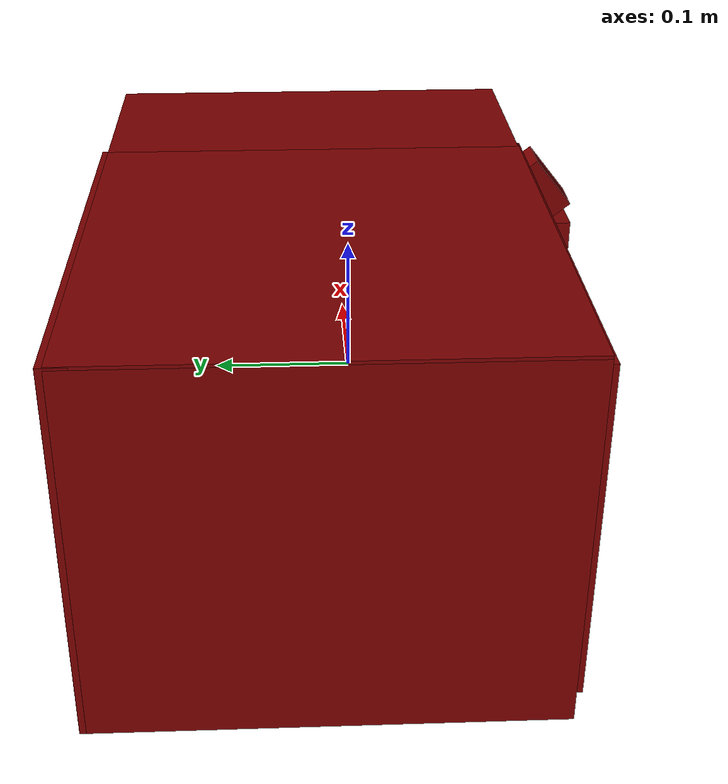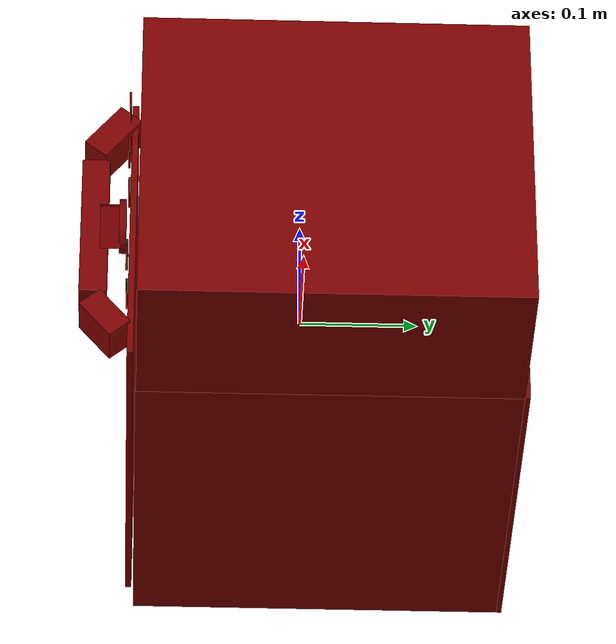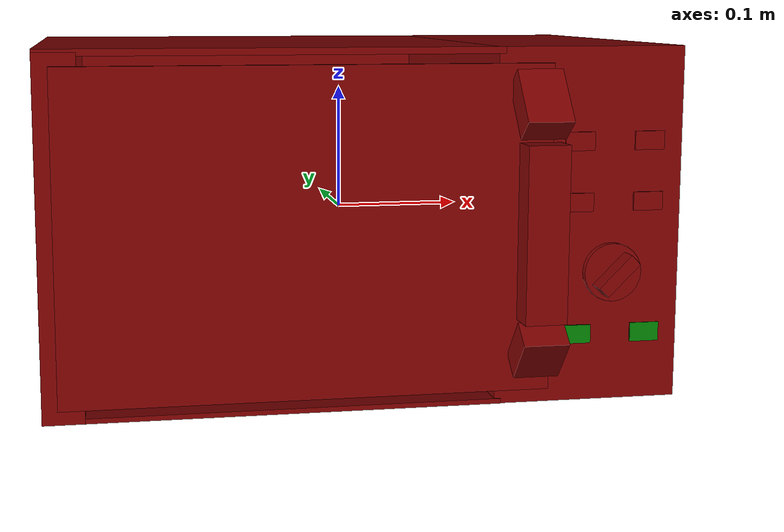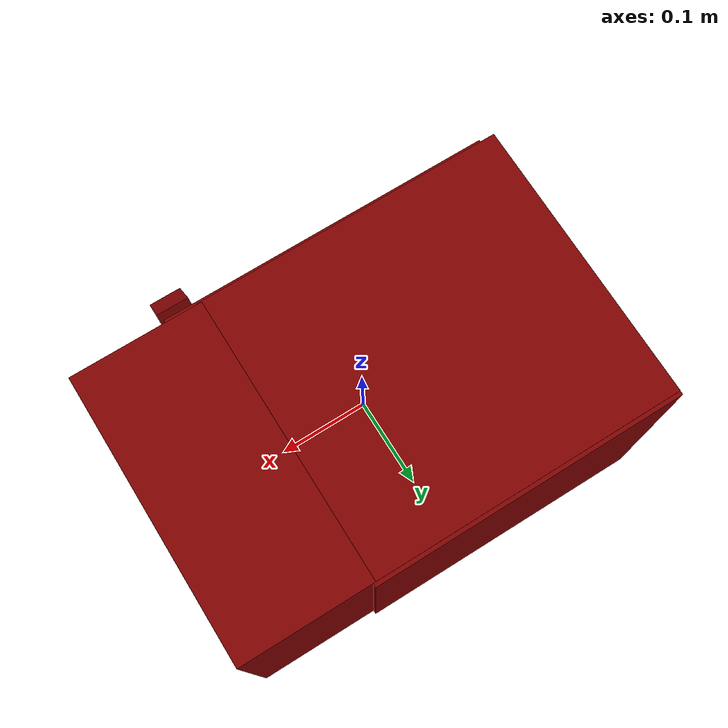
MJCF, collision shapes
<?xml version='1.0' encoding='UTF-8'?>
<mujoco model="model">
  <option timestep="0.002" gravity="0.0 0.0 -9.81"/>
  <compiler angle="radian"/>
  <asset>
    <mesh file="visuals/door.obj" name="door_vis"/>
    <mesh file="visuals/door_Clear.obj" name="door_Clear_vis"/>
    <mesh file="visuals/Body001.obj" name="Body001_vis"/>
    <mesh file="visuals/Button001.obj" name="Button001_vis"/>
    <mesh file="visuals/Button002.obj" name="Button002_vis"/>
    <mesh file="visuals/Button003.obj" name="Button003_vis"/>
    <mesh file="visuals/Button004.obj" name="Button004_vis"/>
    <mesh file="visuals/Button005.obj" name="Button005_vis"/>
    <mesh file="visuals/Button006.obj" name="Button006_vis"/>
    <mesh file="visuals/Disc001.obj" name="Disc001_vis"/>
    <mesh file="visuals/Knob001.obj" name="Knob001_vis"/>
    <texture file="visuals/T_BC001.png" name="Body001_material" type="2d"/>
    <material name="Body001_material" rgba="1 1 1 1.0" texture="Body001_material" shininess="0.2512328028678894" specular="0.5"/>
    <texture file="visuals/T_BC001.png" name="door_material" type="2d"/>
    <material name="door_material" rgba="1 1 1 1.0" texture="door_material" shininess="0.2512328028678894" specular="0.5"/>
    <texture file="visuals/T_BC001.png" name="door_Clear_material" type="2d"/>
    <material name="door_Clear_material" rgba="1 1 1 0.699999988079071" texture="door_Clear_material" shininess="0.4472135901451111" specular="0.3103448502657381"/>
    <texture file="visuals/T_BC001.png" name="Button001_material" type="2d"/>
    <material name="Button001_material" rgba="1 1 1 1.0" texture="Button001_material" shininess="0.2512328028678894" specular="0.3103448502657381"/>
    <texture file="visuals/T_BC001.png" name="Button002_material" type="2d"/>
    <material name="Button002_material" rgba="1 1 1 1.0" texture="Button002_material" shininess="0.2512328028678894" specular="0.3103448502657381"/>
    <texture file="visuals/T_BC001.png" name="Button003_material" type="2d"/>
    <material name="Button003_material" rgba="1 1 1 1.0" texture="Button003_material" shininess="0.2512328028678894" specular="0.3103448502657381"/>
    <texture file="visuals/T_BC001.png" name="Button004_material" type="2d"/>
    <material name="Button004_material" rgba="1 1 1 1.0" texture="Button004_material" shininess="0.2512328028678894" specular="0.3103448502657381"/>
    <texture file="visuals/T_BC001.png" name="Button005_material" type="2d"/>
    <material name="Button005_material" rgba="1 1 1 1.0" texture="Button005_material" shininess="0.2512328028678894" specular="0.3103448502657381"/>
    <texture file="visuals/T_BC001.png" name="Button006_material" type="2d"/>
    <material name="Button006_material" rgba="1 1 1 1.0" texture="Button006_material" shininess="0.2512328028678894" specular="0.3103448502657381"/>
    <texture file="visuals/T_BC001.png" name="Disc001_material" type="2d"/>
    <material name="Disc001_material" rgba="1 1 1 1.0" texture="Disc001_material" shininess="0.2512328028678894" specular="0.3103448502657381"/>
    <texture file="visuals/T_BC001.png" name="Knob001_material" type="2d"/>
    <material name="Knob001_material" rgba="1 1 1 1.0" texture="Knob001_material" shininess="0.2512328028678894" specular="0.3103448502657381"/>
  </asset>
  <default>
    <default class="visual">
      <geom conaffinity="0" contype="0" group="1" type="mesh"/>
    </default>
    <default class="collision">
      <geom group="0" rgba="0.5 0 0 0.5"/>
    </default>
    <default class="spawn">
      <geom group="0" rgba="1 1 1 0.5" contype="0" conaffinity="0"/>
      <site group="0" rgba="1 1 1 0.5"/>
    </default>
    <default class="region">
      <geom group="1" conaffinity="0" contype="0" rgba="0 1 0 0"/>
    </default>
  </default>
  <worldbody>
    <body>
      <body name="object">
        <geom class="collision" type="cylinder" pos="-0.049486346542835236 0.028427844867110252 -0.12795056402683258" size="0.12629246711730957 0.0015484322793781757" quat="1.0 0.0 0.0 0.0" name="tray" rgba="0 1 0 0.5"/>
        <geom class="collision" type="box" pos="0.21474409103393555 -0.147808238863945 -0.08271971344947815" size="0.011546311900019646 0.0002732244902290404 0.007355997804552317" quat="1.0 0.0 0.0 0.0" name="stop_button" rgba="0.0 0.5 0 0.5"/>
        <geom class="collision" type="box" pos="0.1598050445318222 -0.14758211374282837 -0.08281735330820084" size="0.011595126241445541 0.0002732244902290404 0.00716072553768754" quat="1.0 0.0 0.0 0.0" name="start_button" rgba="0.0 0.5 0 0.5"/>
        <geom mesh="Body001_vis" type="mesh" solimp="0.998 0.998 0.001" solref="0.001 1" friction="0.95 0.3 0.1" class="visual" material="Body001_material"/>
        <geom class="collision" type="box" pos="-0.0706014633178711 0.02172013930976391 0.1348339319229126" size="0.17388677597045898 0.16072344779968262 0.0026097458321601152" quat="1.0 0.0 0.0 0.0"/>
        <geom class="collision" type="box" pos="-0.0706014633178711 0.02172013930976391 -0.13550342619419098" size="0.1738876849412918 0.16072434186935425 0.0019576263148337603" quat="1.0 0.0 0.0 0.0"/>
        <geom class="collision" type="box" pos="-0.22876307368278503 0.02172013930976391 -0.0011795125901699066" size="0.015735313296318054 0.16072483360767365 0.136280819773674" quat="1.0 0.0 0.0 0.0"/>
        <geom class="collision" type="box" pos="0.17131167650222778 0.022142408415675163 -5.678956767951604e-06" size="0.07318626344203949 0.1603030562400818 0.13745558261871338" quat="1.0 0.0 0.0 0.0"/>
        <geom class="collision" type="box" pos="-0.07174018025398254 0.17736266553401947 -0.0003470086958259344" size="0.17275722324848175 0.009522153995931149 0.13711294531822205" quat="1.0 0.0 0.0 0.0"/>
        <body name="door">
          <joint axis="0.0 0.0 1.0" pos="-0.22993920743465424 -0.14336863160133362 0.0006045997142791748" limited="true" name="microjoint" range="-1.5707963267948966 0.0" type="hinge" damping="1" frictionloss="1" armature=".01" stiffness="0.05"/>
          <geom mesh="door_vis" type="mesh" solimp="0.998 0.998 0.001" solref="0.001 1" friction="0.95 0.3 0.1" class="visual" material="door_material"/>
          <geom class="collision" type="box" pos="-0.04696047678589821 -0.14351913332939148 -1.321511808782816e-05" size="0.18577438592910767 0.002649904228746891 0.12520691752433777" quat="1.0 0.0 0.0 0.0"/>
          <geom class="collision" type="box" pos="0.12413503229618073 -0.1617792397737503 0.09582488238811493" size="0.01756284013390541 0.01146131381392479 0.023672543466091156" quat="0.9437553882598877 -0.3306444585323334 -0.0 0.0"/>
          <geom class="collision" type="box" pos="0.12413503229618073 -0.16497746109962463 -0.08885825425386429" size="0.01756284013390541 0.011082478798925877 0.02001846395432949" quat="0.9395060539245605 0.34253230690956116 0.0 0.0"/>
          <geom class="collision" type="box" pos="-0.044185325503349304 -0.14467108249664307 0.0011875256896018982" size="0.18271194398403168 0.001327464240603149 0.12164296209812164" quat="1.0 0.0 0.0 0.0" name="door_main"/>
          <geom class="collision" type="box" pos="-0.04811477288603783 -0.14364230632781982 -0.0012340329121798277" size="0.14932376146316528 0.002033068798482418 0.09587067365646362" quat="1.0 0.0 0.0 0.0"/>
          <geom class="collision" type="box" pos="0.12286815047264099 -0.17551285028457642 0.0013099480420351028" size="0.0158797949552536 0.011475786566734314 0.06650149822235107" quat="1.0 0.0 0.0 0.0" name="door_handle_main"/>
          <body name="door_Clear">
            <geom mesh="door_Clear_vis" type="mesh" solimp="0.998 0.998 0.001" solref="0.001 1" friction="0.95 0.3 0.1" class="visual" material="door_Clear_material"/>
            <geom class="collision" type="box" pos="-0.04811477288603783 -0.14364230632781982 -0.0012340329121798277" size="0.14932376146316528 0.002033068798482418 0.09587067365646362" quat="1.0 0.0 0.0 0.0"/>
          </body>
        </body>
        <body name="Button001">
          <joint axis="0.0 1.0 0.0" pos="0.15971553325653076 -0.14632542431354523 0.06611817330121994" limited="true" name="Button001_joint" range="0.0 0.0008" type="slide" damping="1" frictionloss="1" armature=".01" stiffness="0.05"/>
          <geom mesh="Button001_vis" type="mesh" solimp="0.998 0.998 0.001" solref="0.001 1" friction="0.95 0.3 0.1" class="visual" material="Button001_material"/>
          <geom class="collision" type="box" pos="0.15974293649196625 -0.1470450609922409 0.06624475866556168" size="0.011595126241445541 0.0008283754577860236 0.007098611444234848" quat="1.0 0.0 0.0 0.0"/>
        </body>
        <body name="Button002">
          <joint axis="0.0 1.0 0.0" pos="0.21473239362239838 -0.14632542431354523 0.06611817330121994" limited="true" name="Button002_joint" range="0.0 0.0008" type="slide" damping="1" frictionloss="1" armature=".01" stiffness="0.05"/>
          <geom mesh="Button002_vis" type="mesh" solimp="0.998 0.998 0.001" solref="0.001 1" friction="0.95 0.3 0.1" class="visual" material="Button002_material"/>
          <geom class="collision" type="box" pos="0.21481089293956757 -0.1470450609922409 0.06624475866556168" size="0.011595126241445541 0.0008283754577860236 0.00709866126999259" quat="1.0 0.0 0.0 0.0"/>
        </body>
        <body name="Button003">
          <joint axis="0.0 1.0 0.0" pos="0.21473239362239838 -0.14632542431354523 0.01943928375840187" limited="true" name="Button003_joint" range="0.0 0.0008" type="slide" damping="1" frictionloss="1" armature=".01" stiffness="0.05"/>
          <geom mesh="Button003_vis" type="mesh" solimp="0.998 0.998 0.001" solref="0.001 1" friction="0.95 0.3 0.1" class="visual" material="Button003_material"/>
          <geom class="collision" type="box" pos="0.21481089293956757 -0.1470450609922409 0.019612744450569153" size="0.011595126241445541 0.0008283754577860236 0.007098672911524773" quat="1.0 0.0 0.0 0.0"/>
        </body>
        <body name="Button004">
          <joint axis="0.0 1.0 0.0" pos="0.15971553325653076 -0.14632542431354523 0.01943928375840187" limited="true" name="Button004_joint" range="0.0 0.0008" type="slide" damping="1" frictionloss="1" armature=".01" stiffness="0.05"/>
          <geom mesh="Button004_vis" type="mesh" solimp="0.998 0.998 0.001" solref="0.001 1" friction="0.95 0.3 0.1" class="visual" material="Button004_material"/>
          <geom class="collision" type="box" pos="0.15974293649196625 -0.1470450609922409 0.019612744450569153" size="0.011595126241445541 0.0008283754577860236 0.007098684553056955" quat="1.0 0.0 0.0 0.0"/>
        </body>
        <body name="Button005">
          <joint axis="0.0 1.0 0.0" pos="0.15971553325653076 -0.14632542431354523 -0.08277631551027298" limited="true" name="Button005_joint" range="0.0 0.0008" type="slide" damping="1" frictionloss="1" armature=".01" stiffness="0.05"/>
          <geom mesh="Button005_vis" type="mesh" solimp="0.998 0.998 0.001" solref="0.001 1" friction="0.95 0.3 0.1" class="visual" material="Button005_material"/>
          <geom class="collision" type="box" pos="0.15974293649196625 -0.14668536186218262 -0.08270964026451111" size="0.011595126241445541 0.00046866884804330766 0.007098696194589138" quat="1.0 0.0 0.0 0.0"/>
        </body>
        <body name="Button006">
          <joint axis="0.0 1.0 0.0" pos="0.21473239362239838 -0.14632542431354523 -0.08277631551027298" limited="true" name="Button006_joint" range="0.0 0.0008" type="slide" damping="1" frictionloss="1" armature=".01" stiffness="0.05"/>
          <geom mesh="Button006_vis" type="mesh" solimp="0.998 0.998 0.001" solref="0.001 1" friction="0.95 0.3 0.1" class="visual" material="Button006_material"/>
          <geom class="collision" type="box" pos="0.21481089293956757 -0.14682964980602264 -0.08270964026451111" size="0.011595126241445541 0.0006129642715677619 0.007098707836121321" quat="1.0 0.0 0.0 0.0"/>
        </body>
        <body name="Disc001">
          <joint axis="0.0 0.0 1.0" pos="-0.04954634606838226 0.028565524145960808 -0.1278267502784729" limited="false" name="Disc001_joint" range="0 360" type="hinge" damping="1" frictionloss="1" armature=".01" stiffness="0.05"/>
          <geom mesh="Disc001_vis" type="mesh" solimp="0.998 0.998 0.001" solref="0.001 1" friction="0.95 0.3 0.1" class="visual" material="Disc001_material"/>
          <geom class="collision" type="cylinder" pos="-0.049486350268125534 0.028427844867110252 -0.13212239742279053" size="0.12629246711730957 0.0010014482541009784" quat="1.0 0.0 0.0 0.0"/>
        </body>
        <body name="Knob001">
          <joint axis="0.0 1.0 0.0" pos="0.18581019341945648 -0.15612822771072388 -0.03401125967502594" limited="true" name="Knob001_joint" range="0.0 4.729842272904633" type="hinge" damping="0.05" frictionloss="0.75" armature="0.5"/>
          <geom mesh="Knob001_vis" type="mesh" solimp="0.998 0.998 0.001" solref="0.001 1" friction="0.95 0.3 0.1" class="visual" material="Knob001_material"/>
          <geom class="collision" type="cylinder" pos="0.18582980334758759 -0.15132565796375275 -0.033968519419431686" size="0.022396370768547058 0.0027872722130268812" quat="0.7071067094802856 0.7071068286895752 0.0 0.0" friction="100 0.5 0.01"/>
          <geom class="collision" type="box" pos="0.18571440875530243 -0.16174644231796265 -0.03421032801270485" size="0.017466221004724503 0.007978677749633789 0.004965361673384905" quat="0.9238795042037964 -5.010813134862999e-15 -0.3826834559440613 -5.1416904511825123e-08" friction="100 0.5 0.01"/>
        </body>
        <geom class="region" name="reg_int" type="box" pos="-0.05705341696739197 0.027918532490730286 0.0001684054732322693" size="0.14999924397468567 0.1339173445701599 0.12757054513692856"/>
        <geom class="region" name="reg_main" type="box" pos="3.725290298461914e-09 0.020357578992843628 -7.450580596923828e-09" size="0.24550001120567322 0.16752783751487732 0.13848079538345337"/>
      <geom class="region" name="reg_tray" type="cylinder" pos="-0.049486346542835236 0.028427844867110252 0.0006684094313532118" size="0.12629246711730957 0.12607054117880762"/></body>
    </body>
  </worldbody>
  <actuator>
    <motor name="microjoint_actuator" joint="microjoint" gear="5"/>
    <motor name="Button001_joint_actuator" joint="Button001_joint" gear="0.1"/>
    <motor name="Button002_joint_actuator" joint="Button002_joint" gear="0.1"/>
    <motor name="Button003_joint_actuator" joint="Button003_joint" gear="0.1"/>
    <motor name="Button004_joint_actuator" joint="Button004_joint" gear="0.1"/>
    <motor name="Button005_joint_actuator" joint="Button005_joint" gear="0.1"/>
    <motor name="Button006_joint_actuator" joint="Button006_joint" gear="0.1"/>
    <motor name="Disc001_joint_actuator" joint="Disc001_joint" gear="10"/>
    <motor name="Knob001_joint_actuator" joint="Knob001_joint" gear="10"/>
  </actuator>
</mujoco>
